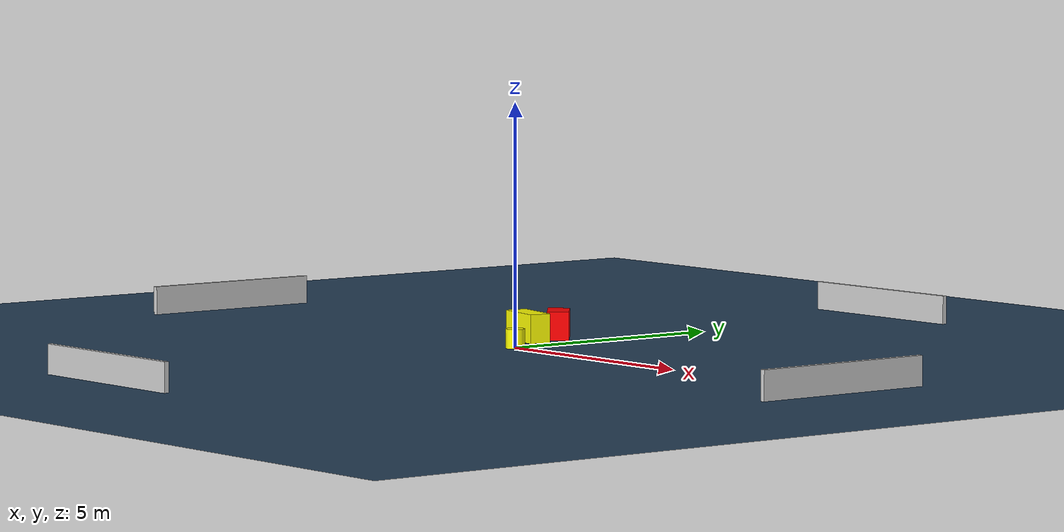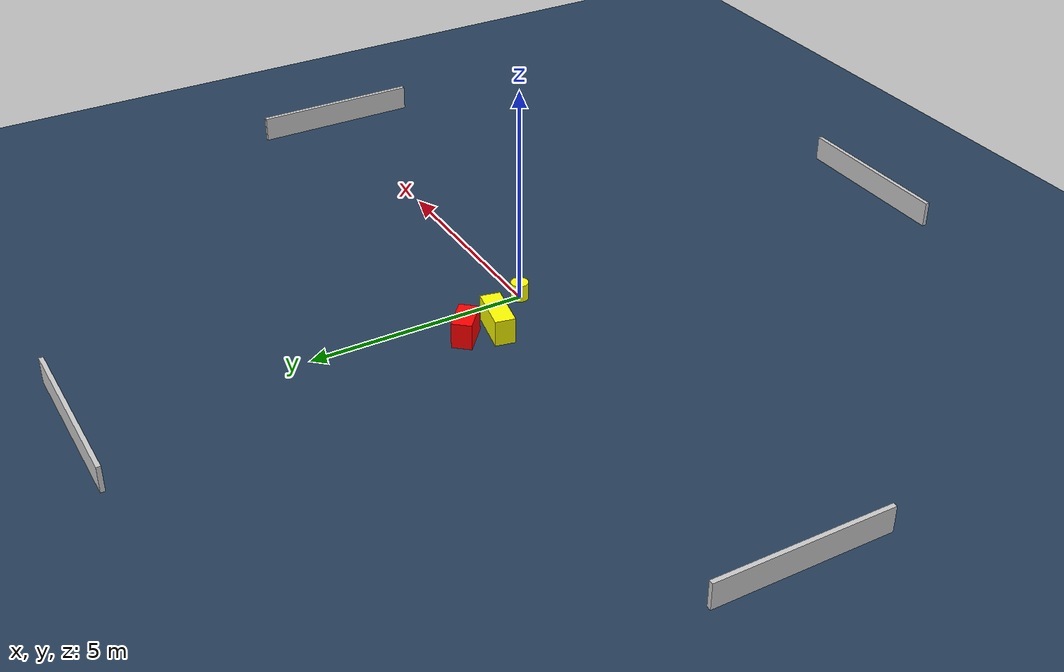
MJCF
<?xml version="1.0" ?>
<mujoco model="generated_environment">
  <option timestep="0.01" integrator="RK4" cone="elliptic"/>
  <default>
    <geom density="1"/>
  </default>
  <asset>
    <texture builtin="gradient" height="3072" name="skybox" rgb1="0.3 0.5 0.7" rgb2="0 0 0" type="skybox" width="512"/>
    <texture builtin="checker" height="300" name="groundplane" rgb1="0.2 0.3 0.4" rgb2="0.1 0.2 0.3" type="2d" width="300"/>
    <material name="groundplane" reflectance="0.2" texrepeat="5 5" texture="groundplane"/>
  </asset>
  <worldbody>
    <light dir="0 0 -1" directional="true" pos="0 0 1.5"/>
    <geom condim="3" friction="0.5 0.005 0.001" material="groundplane" name="floor" pos="0 0 0" size="0 0 0.05" type="plane"/>
    <body name="walls">
      <geom name="wall_1" condim="4" pos="-10.0 0.0 0.3" rgba="0.800000011920929 0.800000011920929 0.800000011920929 1.0" size="0.05 2.0 0.3" type="box"/>
      <geom name="wall_2" condim="4" pos="10.0 0.0 0.3" rgba="0.800000011920929 0.800000011920929 0.800000011920929 1.0" size="0.05 2.0 0.3" type="box"/>
      <geom name="wall_3" condim="4" pos="0.0 -10.0 0.3" rgba="0.800000011920929 0.800000011920929 0.800000011920929 1.0" size="2.0 0.05 0.3" type="box"/>
      <geom name="wall_4" condim="4" pos="0.0 10.0 0.3" rgba="0.800000011920929 0.800000011920929 0.800000011920929 1.0" size="2.0 0.05 0.3" type="box"/>
    </body>
    <body name="robot">
      <joint name="joint_x" type="slide" pos="0 0 0" axis="1 0 0"/>
      <joint name="joint_y" type="slide" pos="0 0 0" axis="0 1 0"/>
      <geom name="robot" type="cylinder" pos="0.0 0.0 0.2" size="0.2 0.2 0.0" mass="5.0" friction="1.0 0.005 0.0001" condim="4" rgba="1.0 1.0 0.0 1.0"/>
    </body>
    <body name="obstacle_1_movable">
      <geom name="obstacle_1_movable" condim="4" pos="-0.9183088608352343 1.0580653475840223 0.3" euler="0 0 258.70089751463973" friction="0.0 0.005 0.001" rgba="1.0 1.0 0.0 1.0" size="0.22780797012136203 0.5444725862880668 0.3" type="box" mass="0.1"/>
      <joint type="free"/>
    </body>
    <body name="obstacle_2_static">
      <geom name="obstacle_2_static" condim="4" pos="-0.8449610156857956 1.7954440786824053 0.3" euler="0 0 319.5597495588588" friction="0.0 0.005 0.001" rgba="1.0 0.0 0.0 1.0" size="0.3904350387478628 0.2270664434133475 0.3" type="box"/>
    </body>
  </worldbody>
  <actuator>
    <motor name="actuator_x" joint="joint_x" gear="1" ctrlrange="-1 1"/>
    <motor name="actuator_y" joint="joint_y" gear="1" ctrlrange="-1 1"/>
  </actuator>
</mujoco>
